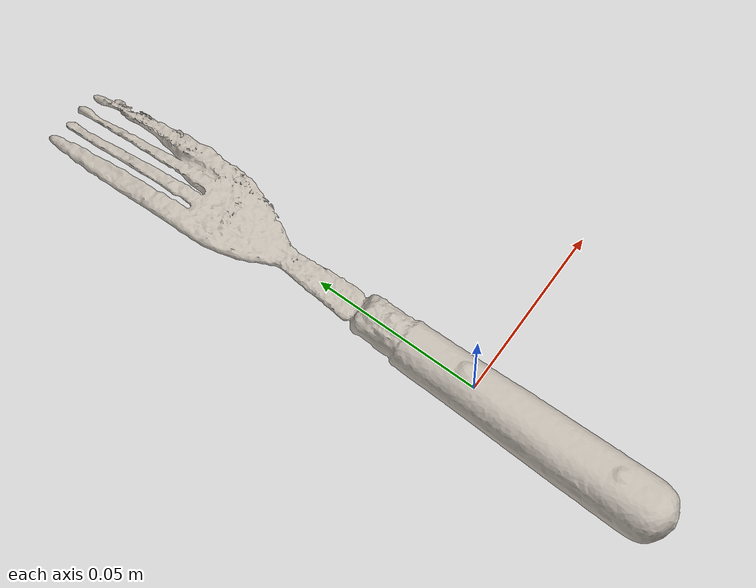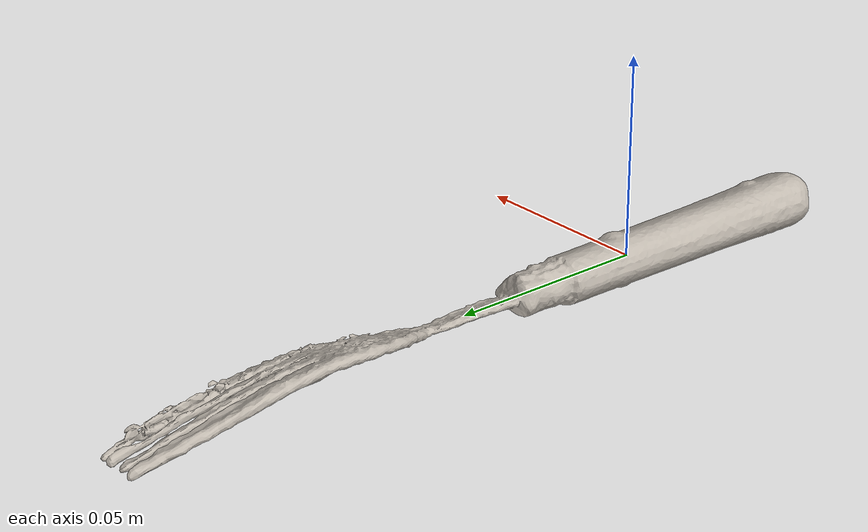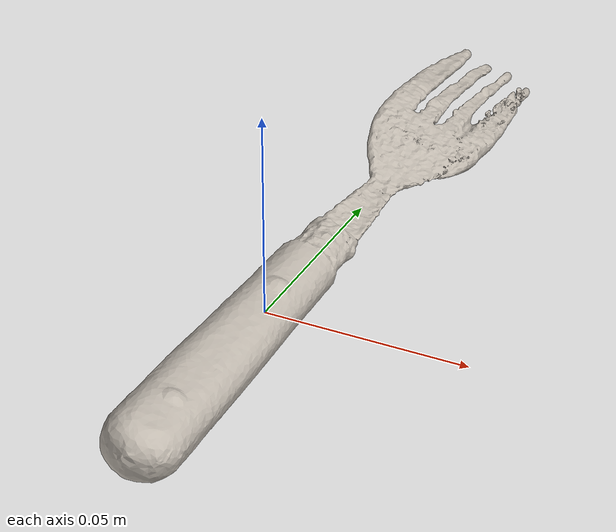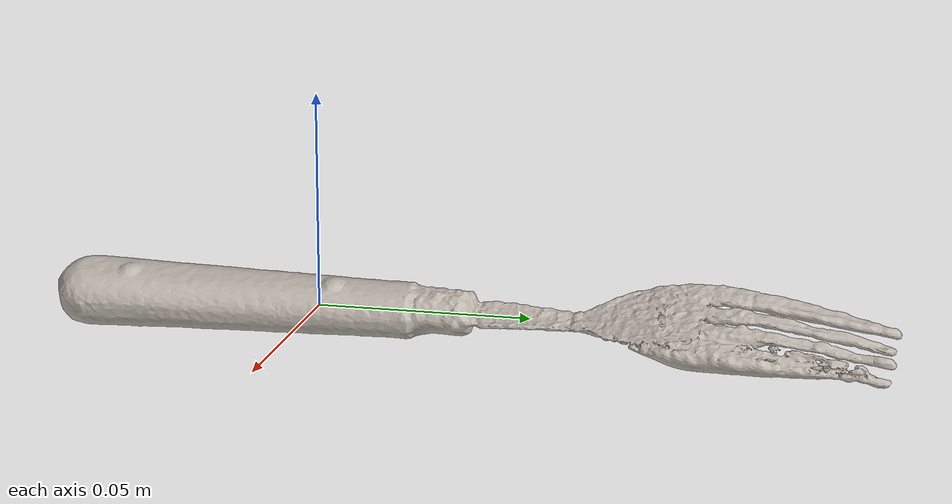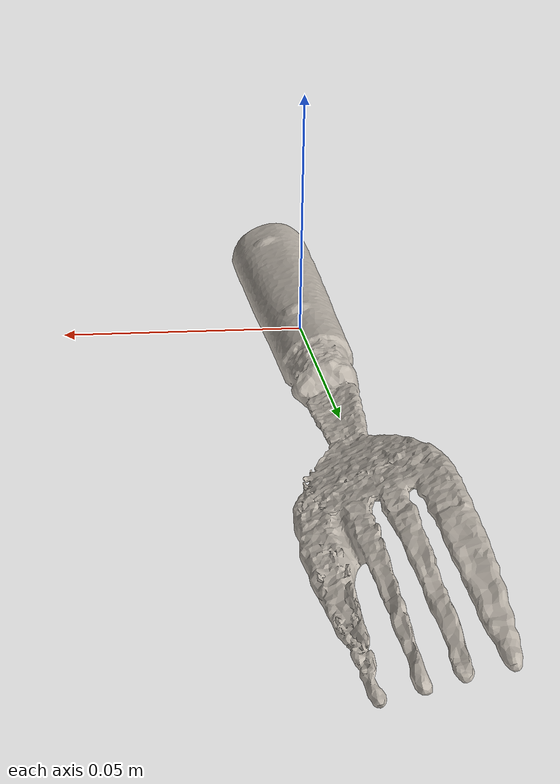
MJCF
<mujoco model="fork">
  <compiler angle="radian" />

  <asset>
    <mesh name="fork_visual_mesh" file="fork/textured.obj" />
    <mesh name="fork_collision_mesh_0" file="fork/textured_coacd_0.stl" />
    <mesh name="fork_collision_mesh_1" file="fork/textured_coacd_1.stl" />
    <texture name="fork_texture" type="2d" file="fork/texture_map.png" />
    <material name="fork_material" texture="fork_texture" />
  </asset>

  <worldbody>
    <body name="fork" pos="0 0 0" euler="0 0 0">
      <freejoint name="fork_joint" />
      <geom name="fork_visual_geom" type="mesh" mesh="fork_visual_mesh" material="fork_material" pos="-0.0 0.0 -0.0" euler="0 0 0" contype="0" conaffinity="0" group="0" />
      <geom name="fork_collision_geom_0" type="mesh" mesh="fork_collision_mesh_0" pos="-0.0 0.0 -0.0" euler="0 0 0" contype="1" conaffinity="1" group="3" />
      <geom name="fork_collision_geom_1" type="mesh" mesh="fork_collision_mesh_1" pos="-0.0 0.0 -0.0" euler="0 0 0" contype="1" conaffinity="1" group="3" />
      <inertial pos="0 0 0" euler="0 0 0" mass="0.034" diaginertia="0.001 0.001 0.001" />
    </body>
  </worldbody>
</mujoco>
